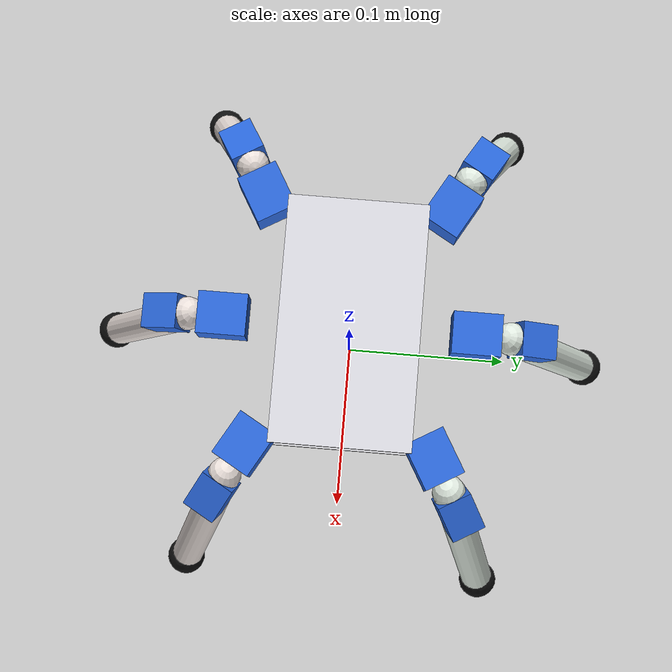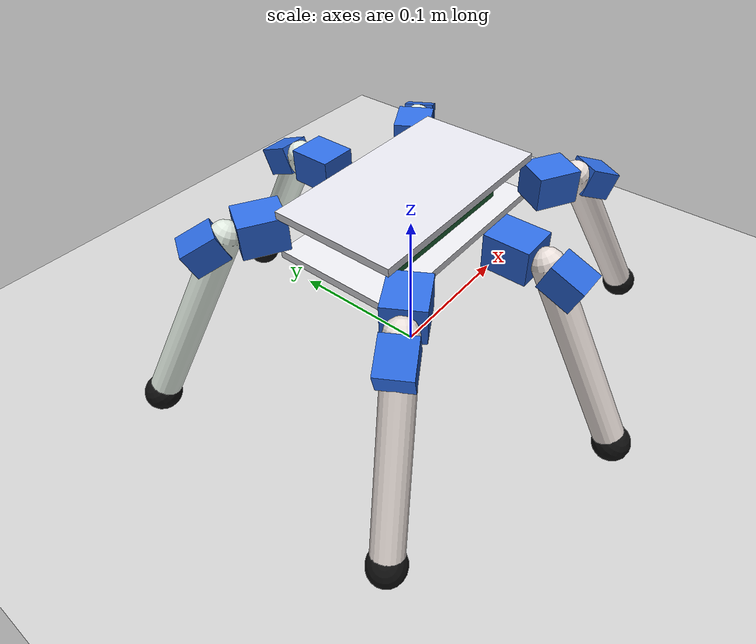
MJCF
<mujoco model="hexapod">
  <compiler angle="degree" meshdir="meshes"/>

  <visual>
    <global offwidth="1280" offheight="960"/>
    <quality shadowsize="4096"/>
  </visual>

  <option timestep="0.002" gravity="0 0 -9.81" integrator="RK4">
    <flag warmstart="enable"/>
  </option>

  <default>
    <joint limited="true" damping="0.5" armature="0.01"/>
    <geom contype="1" conaffinity="1" friction="1.0 0.005 0.0001" rgba="0.8 0.8 0.8 1"/>
    <!-- Higher torque authority for PD control -->
    <motor ctrllimited="true" ctrlrange="-2 2" gear="5"/>
  </default>

  <asset>
    <texture name="grid" type="2d" builtin="checker" rgb1="0.1 0.2 0.3" rgb2="0.2 0.3 0.4" width="512" height="512"/>
    <material name="grid_mat" texture="grid" texrepeat="5 5" reflectance="0.2"/>
  </asset>

  <worldbody>
    <!-- Higher friction for better grip (slide, spin, roll) -->
    <geom name="floor" type="plane" size="10 10 0.1" material="grid_mat" conaffinity="1" contype="1" friction="1.5 0.01 0.001"/>
    <light name="light" pos="0 0 5" dir="0 0 -1" diffuse="1 1 1"/>

    <!-- Chassis: double plate + gap; hip yaw at z=0 between plates (vertical servo axis) -->
    <body name="torso" pos="0 0 0.115">
      <freejoint name="root"/>
      <geom name="chassis_bottom" type="box" pos="0 0 -0.0135" size="0.07 0.04 0.0025" rgba="0.90 0.90 0.92 1" mass="0.11"/>
      <geom name="chassis_top" type="box" pos="0 0 0.0135" size="0.07 0.04 0.0025" rgba="0.88 0.88 0.91 1" mass="0.10"/>
      <geom name="chassis_electronics" type="box" pos="0 0 0" size="0.048 0.028 0.009" rgba="0.12 0.42 0.22 1" contype="0" conaffinity="0" mass="0.09"/>
      <site name="imu_site" pos="0 0 0" size="0.01"/>

      <!-- Leg 1: Front-Right (hip yaw Z, knee pitch Y) -->
      <body name="leg1_hip" pos="0.056 -0.044 0" euler="0 0 -30">
        <joint name="leg1_abduction" type="hinge" axis="0 0 1" range="-45 45" ref="0"/>
        <geom name="leg1_hip_geom" type="box" pos="0.018 0 0" size="0.014 0.012 0.011" rgba="0.18 0.42 0.88 1" mass="0.011"/>
        <body name="leg1_knee" pos="0.038 0 0" euler="0 22 0">
          <joint name="leg1_flexion" type="hinge" axis="0 1 0" range="-90 90" ref="0"/>
          <geom name="leg1_knee_servo" type="box" pos="0.014 0 0" size="0.011 0.010 0.009" rgba="0.16 0.40 0.85 1" mass="0.008"/>
          <geom name="leg1_leg_geom" type="capsule" fromto="0 0 0 0.095 0 -0.078" size="0.0095" rgba="0.92 0.88 0.86 1" mass="0.022"/>
          <body name="leg1_foot" pos="0.095 0 -0.078">
            <geom name="leg1_foot_geom" type="sphere" size="0.0115" rgba="0.06 0.06 0.06 1" mass="0.006" friction="1.2 0.015 0.002"/>
            <site name="leg1_contact" pos="0 0 0" size="0.01"/>
          </body>
        </body>
      </body>

      <!-- Leg 2: Front-Left -->
      <body name="leg2_hip" pos="0.056 0.044 0" euler="0 0 30">
        <joint name="leg2_abduction" type="hinge" axis="0 0 1" range="-45 45" ref="0"/>
        <geom name="leg2_hip_geom" type="box" pos="0.018 0 0" size="0.014 0.012 0.011" rgba="0.18 0.42 0.88 1" mass="0.011"/>
        <body name="leg2_knee" pos="0.038 0 0" euler="0 22 0">
          <joint name="leg2_flexion" type="hinge" axis="0 1 0" range="-90 90" ref="0"/>
          <geom name="leg2_knee_servo" type="box" pos="0.014 0 0" size="0.011 0.010 0.009" rgba="0.16 0.40 0.85 1" mass="0.008"/>
          <geom name="leg2_leg_geom" type="capsule" fromto="0 0 0 0.095 0 -0.078" size="0.0095" rgba="0.88 0.92 0.88 1" mass="0.022"/>
          <body name="leg2_foot" pos="0.095 0 -0.078">
            <geom name="leg2_foot_geom" type="sphere" size="0.0115" rgba="0.06 0.06 0.06 1" mass="0.006" friction="1.2 0.015 0.002"/>
            <site name="leg2_contact" pos="0 0 0" size="0.01"/>
          </body>
        </body>
      </body>

      <!-- Leg 3: Middle-Right -->
      <body name="leg3_hip" pos="0 -0.054 0" euler="0 0 -90">
        <joint name="leg3_abduction" type="hinge" axis="0 0 1" range="-45 45" ref="0"/>
        <geom name="leg3_hip_geom" type="box" pos="0.018 0 0" size="0.014 0.012 0.011" rgba="0.18 0.42 0.88 1" mass="0.011"/>
        <body name="leg3_knee" pos="0.038 0 0" euler="0 22 0">
          <joint name="leg3_flexion" type="hinge" axis="0 1 0" range="-90 90" ref="0"/>
          <geom name="leg3_knee_servo" type="box" pos="0.014 0 0" size="0.011 0.010 0.009" rgba="0.16 0.40 0.85 1" mass="0.008"/>
          <geom name="leg3_leg_geom" type="capsule" fromto="0 0 0 0.095 0 -0.078" size="0.0095" rgba="0.92 0.88 0.86 1" mass="0.022"/>
          <body name="leg3_foot" pos="0.095 0 -0.078">
            <geom name="leg3_foot_geom" type="sphere" size="0.0115" rgba="0.06 0.06 0.06 1" mass="0.006" friction="1.2 0.015 0.002"/>
            <site name="leg3_contact" pos="0 0 0" size="0.01"/>
          </body>
        </body>
      </body>

      <!-- Leg 4: Middle-Left -->
      <body name="leg4_hip" pos="0 0.054 0" euler="0 0 90">
        <joint name="leg4_abduction" type="hinge" axis="0 0 1" range="-45 45" ref="0"/>
        <geom name="leg4_hip_geom" type="box" pos="0.018 0 0" size="0.014 0.012 0.011" rgba="0.18 0.42 0.88 1" mass="0.011"/>
        <body name="leg4_knee" pos="0.038 0 0" euler="0 22 0">
          <joint name="leg4_flexion" type="hinge" axis="0 1 0" range="-90 90" ref="0"/>
          <geom name="leg4_knee_servo" type="box" pos="0.014 0 0" size="0.011 0.010 0.009" rgba="0.16 0.40 0.85 1" mass="0.008"/>
          <geom name="leg4_leg_geom" type="capsule" fromto="0 0 0 0.095 0 -0.078" size="0.0095" rgba="0.88 0.92 0.88 1" mass="0.022"/>
          <body name="leg4_foot" pos="0.095 0 -0.078">
            <geom name="leg4_foot_geom" type="sphere" size="0.0115" rgba="0.06 0.06 0.06 1" mass="0.006" friction="1.2 0.015 0.002"/>
            <site name="leg4_contact" pos="0 0 0" size="0.01"/>
          </body>
        </body>
      </body>

      <!-- Leg 5: Back-Right -->
      <body name="leg5_hip" pos="-0.056 -0.044 0" euler="0 0 -150">
        <joint name="leg5_abduction" type="hinge" axis="0 0 1" range="-45 45" ref="0"/>
        <geom name="leg5_hip_geom" type="box" pos="0.018 0 0" size="0.014 0.012 0.011" rgba="0.18 0.42 0.88 1" mass="0.011"/>
        <body name="leg5_knee" pos="0.038 0 0" euler="0 22 0">
          <joint name="leg5_flexion" type="hinge" axis="0 1 0" range="-90 90" ref="0"/>
          <geom name="leg5_knee_servo" type="box" pos="0.014 0 0" size="0.011 0.010 0.009" rgba="0.16 0.40 0.85 1" mass="0.008"/>
          <geom name="leg5_leg_geom" type="capsule" fromto="0 0 0 0.095 0 -0.078" size="0.0095" rgba="0.92 0.88 0.86 1" mass="0.022"/>
          <body name="leg5_foot" pos="0.095 0 -0.078">
            <geom name="leg5_foot_geom" type="sphere" size="0.0115" rgba="0.06 0.06 0.06 1" mass="0.006" friction="1.2 0.015 0.002"/>
            <site name="leg5_contact" pos="0 0 0" size="0.01"/>
          </body>
        </body>
      </body>

      <!-- Leg 6: Back-Left -->
      <body name="leg6_hip" pos="-0.056 0.044 0" euler="0 0 150">
        <joint name="leg6_abduction" type="hinge" axis="0 0 1" range="-45 45" ref="0"/>
        <geom name="leg6_hip_geom" type="box" pos="0.018 0 0" size="0.014 0.012 0.011" rgba="0.18 0.42 0.88 1" mass="0.011"/>
        <body name="leg6_knee" pos="0.038 0 0" euler="0 22 0">
          <joint name="leg6_flexion" type="hinge" axis="0 1 0" range="-90 90" ref="0"/>
          <geom name="leg6_knee_servo" type="box" pos="0.014 0 0" size="0.011 0.010 0.009" rgba="0.16 0.40 0.85 1" mass="0.008"/>
          <geom name="leg6_leg_geom" type="capsule" fromto="0 0 0 0.095 0 -0.078" size="0.0095" rgba="0.88 0.92 0.88 1" mass="0.022"/>
          <body name="leg6_foot" pos="0.095 0 -0.078">
            <geom name="leg6_foot_geom" type="sphere" size="0.0115" rgba="0.06 0.06 0.06 1" mass="0.006" friction="1.2 0.015 0.002"/>
            <site name="leg6_contact" pos="0 0 0" size="0.01"/>
          </body>
        </body>
      </body>
    </body>
  </worldbody>

  <actuator>
    <!-- 12 motors: 6 abduction + 6 flexion -->
    <motor name="leg1_abd_motor" joint="leg1_abduction"/>
    <motor name="leg1_flex_motor" joint="leg1_flexion"/>
    <motor name="leg2_abd_motor" joint="leg2_abduction"/>
    <motor name="leg2_flex_motor" joint="leg2_flexion"/>
    <motor name="leg3_abd_motor" joint="leg3_abduction"/>
    <motor name="leg3_flex_motor" joint="leg3_flexion"/>
    <motor name="leg4_abd_motor" joint="leg4_abduction"/>
    <motor name="leg4_flex_motor" joint="leg4_flexion"/>
    <motor name="leg5_abd_motor" joint="leg5_abduction"/>
    <motor name="leg5_flex_motor" joint="leg5_flexion"/>
    <motor name="leg6_abd_motor" joint="leg6_abduction"/>
    <motor name="leg6_flex_motor" joint="leg6_flexion"/>
  </actuator>

  <sensor>
    <!-- Joint position sensors -->
    <jointpos name="leg1_abd_pos" joint="leg1_abduction"/>
    <jointpos name="leg1_flex_pos" joint="leg1_flexion"/>
    <jointpos name="leg2_abd_pos" joint="leg2_abduction"/>
    <jointpos name="leg2_flex_pos" joint="leg2_flexion"/>
    <jointpos name="leg3_abd_pos" joint="leg3_abduction"/>
    <jointpos name="leg3_flex_pos" joint="leg3_flexion"/>
    <jointpos name="leg4_abd_pos" joint="leg4_abduction"/>
    <jointpos name="leg4_flex_pos" joint="leg4_flexion"/>
    <jointpos name="leg5_abd_pos" joint="leg5_abduction"/>
    <jointpos name="leg5_flex_pos" joint="leg5_flexion"/>
    <jointpos name="leg6_abd_pos" joint="leg6_abduction"/>
    <jointpos name="leg6_flex_pos" joint="leg6_flexion"/>

    <!-- Joint velocity sensors -->
    <jointvel name="leg1_abd_vel" joint="leg1_abduction"/>
    <jointvel name="leg1_flex_vel" joint="leg1_flexion"/>
    <jointvel name="leg2_abd_vel" joint="leg2_abduction"/>
    <jointvel name="leg2_flex_vel" joint="leg2_flexion"/>
    <jointvel name="leg3_abd_vel" joint="leg3_abduction"/>
    <jointvel name="leg3_flex_vel" joint="leg3_flexion"/>
    <jointvel name="leg4_abd_vel" joint="leg4_abduction"/>
    <jointvel name="leg4_flex_vel" joint="leg4_flexion"/>
    <jointvel name="leg5_abd_vel" joint="leg5_abduction"/>
    <jointvel name="leg5_flex_vel" joint="leg5_flexion"/>
    <jointvel name="leg6_abd_vel" joint="leg6_abduction"/>
    <jointvel name="leg6_flex_vel" joint="leg6_flexion"/>

    <!-- IMU sensors -->
    <accelerometer name="torso_accel" site="imu_site"/>
    <gyro name="torso_gyro" site="imu_site"/>
    <framequat name="torso_quat" objtype="site" objname="imu_site"/>

    <!-- Foot contact sensors -->
    <touch name="leg1_touch" site="leg1_contact"/>
    <touch name="leg2_touch" site="leg2_contact"/>
    <touch name="leg3_touch" site="leg3_contact"/>
    <touch name="leg4_touch" site="leg4_contact"/>
    <touch name="leg5_touch" site="leg5_contact"/>
    <touch name="leg6_touch" site="leg6_contact"/>
  </sensor>

  <!-- Exclude leg-leg collision so legs do not run into each other -->
  <!-- Reasonable standing pose for Reset in Simulate (free joint: xyz, quat wxyz, then 12 hinge angles). -->
  <keyframe>
    <key name="stand" qpos="0 0 0.115 1 0 0 0 0 0 0 0 0 0 0 0 0 0 0 0"/>
  </keyframe>

  <contact>
    <exclude body1="leg1_hip" body2="leg2_hip"/>
    <exclude body1="leg1_hip" body2="leg3_hip"/>
    <exclude body1="leg1_hip" body2="leg4_hip"/>
    <exclude body1="leg1_hip" body2="leg5_hip"/>
    <exclude body1="leg1_hip" body2="leg6_hip"/>
    <exclude body1="leg2_hip" body2="leg3_hip"/>
    <exclude body1="leg2_hip" body2="leg4_hip"/>
    <exclude body1="leg2_hip" body2="leg5_hip"/>
    <exclude body1="leg2_hip" body2="leg6_hip"/>
    <exclude body1="leg3_hip" body2="leg4_hip"/>
    <exclude body1="leg3_hip" body2="leg5_hip"/>
    <exclude body1="leg3_hip" body2="leg6_hip"/>
    <exclude body1="leg4_hip" body2="leg5_hip"/>
    <exclude body1="leg4_hip" body2="leg6_hip"/>
    <exclude body1="leg5_hip" body2="leg6_hip"/>
  </contact>
</mujoco>
